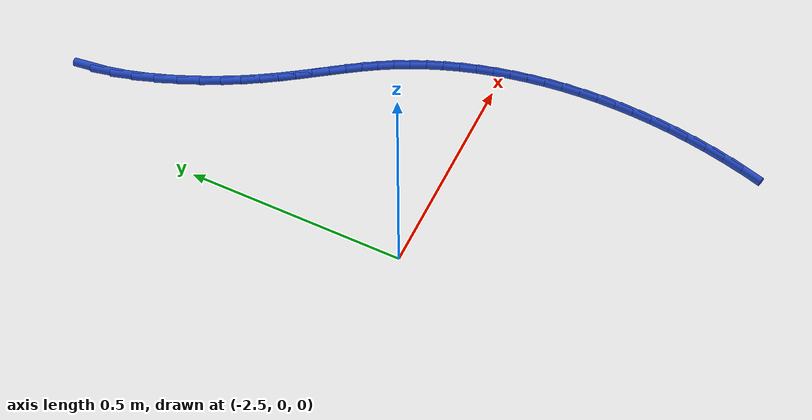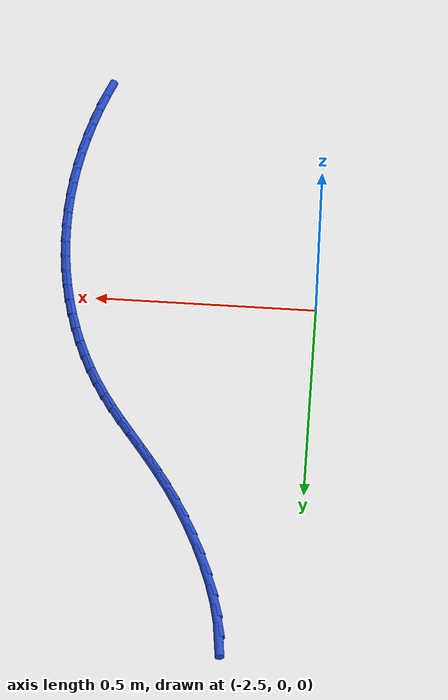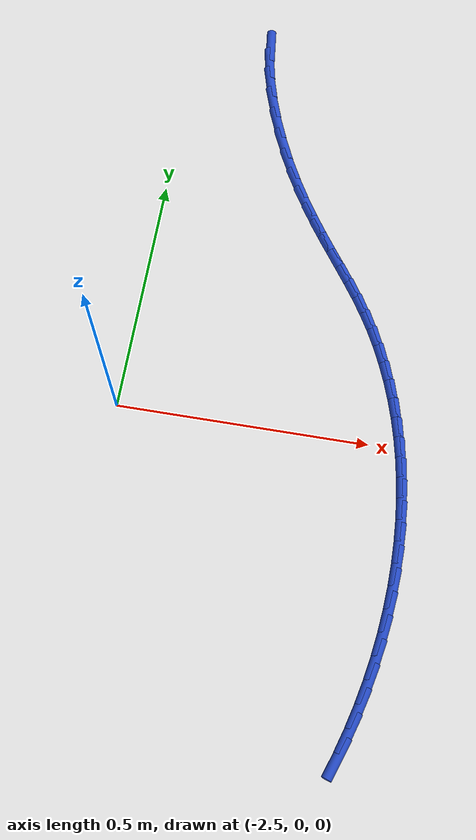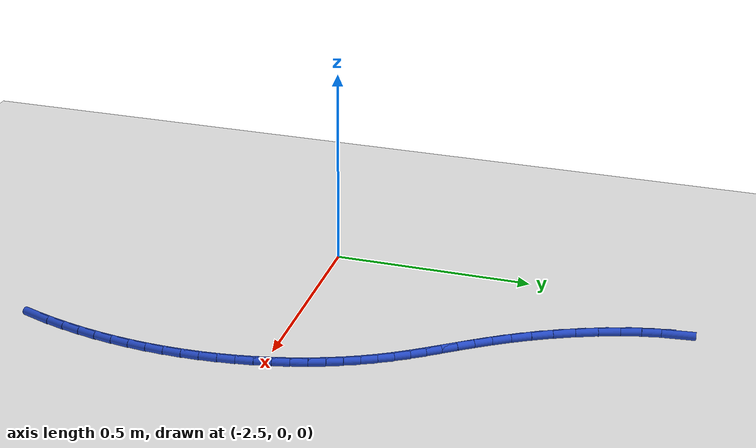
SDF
<sdf version="1.6">
 <world name="default">
  <model name="ground_plane">
   <static>1</static>
   <link name="link">
    <collision name="collision">
     <geometry><plane><normal>0 0 1</normal><size>100 100</size></plane></geometry>
     <surface><friction><ode><mu>100</mu><mu2>50</mu2></ode></friction></surface>
    </collision>
    <visual name="visual">
     <cast_shadows>0</cast_shadows>
     <geometry><plane><normal>0 0 1</normal><size>100 100</size></plane></geometry>
     <material>
      <script><uri>file://media/materials/scripts/gazebo.material</uri><name>Gazebo/WhiteGlow</name></script>
     </material>
    </visual>
   </link>
  </model>
  <model name="line">
   <link name="link_94">
    <pose>-2.339543125354794 0.8880989711312886 0.01 0 1.57 -1.4558069068487225</pose>
    <collision name="collision">
     <geometry><cylinder><radius>0.01</radius><length>0.08</length></cylinder></geometry>
    </collision>
    <visual name="visual">
     <material>
      <script><name>Gazebo/Blue</name><uri>file://media/materials/scripts/gazebo.material</uri></script>
     </material>
     <geometry><cylinder><radius>0.01</radius><length>0.08</length></cylinder></geometry>
    </visual>
   </link>
   <link name="link_95">
    <pose>-2.334252668444939 0.8422937263948799 0.01 0 1.57 -1.362556454553625</pose>
    <collision name="collision">
     <geometry><cylinder><radius>0.01</radius><length>0.08</length></cylinder></geometry>
    </collision>
    <visual name="visual">
     <material>
      <script><name>Gazebo/Blue</name><uri>file://media/materials/scripts/gazebo.material</uri></script>
     </material>
     <geometry><cylinder><radius>0.01</radius><length>0.08</length></cylinder></geometry>
    </visual>
   </link>
   <link name="link_96">
    <pose>-2.3239082006282477 0.7933381236551375 0.01 0 1.57 -1.2915674055985036</pose>
    <collision name="collision">
     <geometry><cylinder><radius>0.01</radius><length>0.08</length></cylinder></geometry>
    </collision>
    <visual name="visual">
     <material>
      <script><name>Gazebo/Blue</name><uri>file://media/materials/scripts/gazebo.material</uri></script>
     </material>
     <geometry><cylinder><radius>0.01</radius><length>0.08</length></cylinder></geometry>
    </visual>
   </link>
   <link name="link_97">
    <pose>-2.309368629777402 0.7426280670860155 0.01 0 1.57 -1.2340909129045048</pose>
    <collision name="collision">
     <geometry><cylinder><radius>0.01</radius><length>0.08</length></cylinder></geometry>
    </collision>
    <visual name="visual">
     <material>
      <script><name>Gazebo/Blue</name><uri>file://media/materials/scripts/gazebo.material</uri></script>
     </material>
     <geometry><cylinder><radius>0.01</radius><length>0.08</length></cylinder></geometry>
    </visual>
   </link>
   <link name="link_98">
    <pose>-2.2914928637650833 0.6915594608614679 0.01 0 1.57 -1.184435828125595</pose>
    <collision name="collision">
     <geometry><cylinder><radius>0.01</radius><length>0.08</length></cylinder></geometry>
    </collision>
    <visual name="visual">
     <material>
      <script><name>Gazebo/Blue</name><uri>file://media/materials/scripts/gazebo.material</uri></script>
     </material>
     <geometry><cylinder><radius>0.01</radius><length>0.08</length></cylinder></geometry>
    </visual>
   </link>
   <link name="link_99">
    <pose>-2.2711398104639726 0.6415282091554497 0.01 0 1.57 -1.1383343717587673</pose>
    <collision name="collision">
     <geometry><cylinder><radius>0.01</radius><length>0.08</length></cylinder></geometry>
    </collision>
    <visual name="visual">
     <material>
      <script><name>Gazebo/Blue</name><uri>file://media/materials/scripts/gazebo.material</uri></script>
     </material>
     <geometry><cylinder><radius>0.01</radius><length>0.08</length></cylinder></geometry>
    </visual>
   </link>
   <link name="link_100">
    <pose>-2.249168377746752 0.5939302161419151 0.01 0 1.57 -1.0925725735714122</pose>
    <collision name="collision">
     <geometry><cylinder><radius>0.01</radius><length>0.08</length></cylinder></geometry>
    </collision>
    <visual name="visual">
     <material>
      <script><name>Gazebo/Blue</name><uri>file://media/materials/scripts/gazebo.material</uri></script>
     </material>
     <geometry><cylinder><radius>0.01</radius><length>0.08</length></cylinder></geometry>
    </visual>
   </link>
   <link name="link_101">
    <pose>-2.226366597310803 0.5499415033219542 0.01 0 1.57 -1.049382398713243</pose>
    <collision name="collision">
     <geometry><cylinder><radius>0.01</radius><length>0.08</length></cylinder></geometry>
    </collision>
    <visual name="visual">
     <material>
      <script><name>Gazebo/Blue</name><uri>file://media/materials/scripts/gazebo.material</uri></script>
     </material>
     <geometry><cylinder><radius>0.01</radius><length>0.08</length></cylinder></geometry>
    </visual>
   </link>
   <link name="link_102">
    <pose>-2.203108166728589 0.5094526828971048 0.01 0 1.57 -1.0119295050223813</pose>
    <collision name="collision">
     <geometry><cylinder><radius>0.01</radius><length>0.08</length></cylinder></geometry>
    </collision>
    <visual name="visual">
     <material>
      <script><name>Gazebo/Blue</name><uri>file://media/materials/scripts/gazebo.material</uri></script>
     </material>
     <geometry><cylinder><radius>0.01</radius><length>0.08</length></cylinder></geometry>
    </visual>
   </link>
   <link name="link_103">
    <pose>-2.179616661858634 0.4718886370323146 0.01 0 1.57 -0.9823118085412881</pose>
    <collision name="collision">
     <geometry><cylinder><radius>0.01</radius><length>0.08</length></cylinder></geometry>
    </collision>
    <visual name="visual">
     <material>
      <script><name>Gazebo/Blue</name><uri>file://media/materials/scripts/gazebo.material</uri></script>
     </material>
     <geometry><cylinder><radius>0.01</radius><length>0.08</length></cylinder></geometry>
    </visual>
   </link>
   <link name="link_104">
    <pose>-2.1561154499528667 0.43667360072194605 0.01 0 1.57 -0.962516980219729</pose>
    <collision name="collision">
     <geometry><cylinder><radius>0.01</radius><length>0.08</length></cylinder></geometry>
    </collision>
    <visual name="visual">
     <material>
      <script><name>Gazebo/Blue</name><uri>file://media/materials/scripts/gazebo.material</uri></script>
     </material>
     <geometry><cylinder><radius>0.01</radius><length>0.08</length></cylinder></geometry>
    </visual>
   </link>
   <link name="link_105">
    <pose>-2.1328278982632174 0.40323180896036326 0.01 0 1.57 -0.95427632426678</pose>
    <collision name="collision">
     <geometry><cylinder><radius>0.01</radius><length>0.08</length></cylinder></geometry>
    </collision>
    <visual name="visual">
     <material>
      <script><name>Gazebo/Blue</name><uri>file://media/materials/scripts/gazebo.material</uri></script>
     </material>
     <geometry><cylinder><radius>0.01</radius><length>0.08</length></cylinder></geometry>
    </visual>
   </link>
   <link name="link_106">
    <pose>-2.1099773740416157 0.37098749674192866 0.01 0 1.57 -0.9589186222257577</pose>
    <collision name="collision">
     <geometry><cylinder><radius>0.01</radius><length>0.08</length></cylinder></geometry>
    </collision>
    <visual name="visual">
     <material>
      <script><name>Gazebo/Blue</name><uri>file://media/materials/scripts/gazebo.material</uri></script>
     </material>
     <geometry><cylinder><radius>0.01</radius><length>0.08</length></cylinder></geometry>
    </visual>
   </link>
   <link name="link_107">
    <pose>-2.087787244539991 0.3393648990610062 0.01 0 1.57 -0.9772179010954428</pose>
    <collision name="collision">
     <geometry><cylinder><radius>0.01</radius><length>0.08</length></cylinder></geometry>
    </collision>
    <visual name="visual">
     <material>
      <script><name>Gazebo/Blue</name><uri>file://media/materials/scripts/gazebo.material</uri></script>
     </material>
     <geometry><cylinder><radius>0.01</radius><length>0.08</length></cylinder></geometry>
    </visual>
   </link>
   <link name="link_108">
    <pose>-2.066480877010272 0.30778825091195827 0.01 0 1.57 -1.0092304292322214</pose>
    <collision name="collision">
     <geometry><cylinder><radius>0.01</radius><length>0.08</length></cylinder></geometry>
    </collision>
    <visual name="visual">
     <material>
      <script><name>Gazebo/Blue</name><uri>file://media/materials/scripts/gazebo.material</uri></script>
     </material>
     <geometry><cylinder><radius>0.01</radius><length>0.08</length></cylinder></geometry>
    </visual>
   </link>
   <link name="link_109">
    <pose>-2.046281638704389 0.27568178728914877 0.01 0 1.57 -1.0533196043115125</pose>
    <collision name="collision">
     <geometry><cylinder><radius>0.01</radius><length>0.08</length></cylinder></geometry>
    </collision>
    <visual name="visual">
     <material>
      <script><name>Gazebo/Blue</name><uri>file://media/materials/scripts/gazebo.material</uri></script>
     </material>
     <geometry><cylinder><radius>0.01</radius><length>0.08</length></cylinder></geometry>
    </visual>
   </link>
   <link name="link_110">
    <pose>-2.027400151692515 0.2425107572726747 0.01 0 1.57 -1.1006351664112304</pose>
    <collision name="collision">
     <geometry><cylinder><radius>0.01</radius><length>0.08</length></cylinder></geometry>
    </collision>
    <visual name="visual">
     <material>
      <script><name>Gazebo/Blue</name><uri>file://media/materials/scripts/gazebo.material</uri></script>
     </material>
     <geometry><cylinder><radius>0.01</radius><length>0.08</length></cylinder></geometry>
    </visual>
   </link>
   <link name="link_111">
    <pose>-2.009927094107801 0.20812639038692746 0.01 0 1.57 -1.1467934607488224</pose>
    <collision name="collision">
     <geometry><cylinder><radius>0.01</radius><length>0.08</length></cylinder></geometry>
    </collision>
    <visual name="visual">
     <material>
      <script><name>Gazebo/Blue</name><uri>file://media/materials/scripts/gazebo.material</uri></script>
     </material>
     <geometry><cylinder><radius>0.01</radius><length>0.08</length></cylinder></geometry>
    </visual>
   </link>
   <link name="link_112">
    <pose>-1.9938873447369927 0.17259165892203893 0.01 0 1.57 -1.1918384753395952</pose>
    <collision name="collision">
     <geometry><cylinder><radius>0.01</radius><length>0.08</length></cylinder></geometry>
    </collision>
    <visual name="visual">
     <material>
      <script><name>Gazebo/Blue</name><uri>file://media/materials/scripts/gazebo.material</uri></script>
     </material>
     <geometry><cylinder><radius>0.01</radius><length>0.08</length></cylinder></geometry>
    </visual>
   </link>
   <link name="link_113">
    <pose>-1.9793051056606983 0.13597171281331627 0.01 0 1.57 -1.2358616298733502</pose>
    <collision name="collision">
     <geometry><cylinder><radius>0.01</radius><length>0.08</length></cylinder></geometry>
    </collision>
    <visual name="visual">
     <material>
      <script><name>Gazebo/Blue</name><uri>file://media/materials/scripts/gazebo.material</uri></script>
     </material>
     <geometry><cylinder><radius>0.01</radius><length>0.08</length></cylinder></geometry>
    </visual>
   </link>
   <link name="link_114">
    <pose>-1.966204578959523 0.09833170199606497 0.01 0 1.57 -1.2789560453083832</pose>
    <collision name="collision">
     <geometry><cylinder><radius>0.01</radius><length>0.08</length></cylinder></geometry>
    </collision>
    <visual name="visual">
     <material>
      <script><name>Gazebo/Blue</name><uri>file://media/materials/scripts/gazebo.material</uri></script>
     </material>
     <geometry><cylinder><radius>0.01</radius><length>0.08</length></cylinder></geometry>
    </visual>
   </link>
   <link name="link_115">
    <pose>-1.9546099667140773 0.05973677640559396 0.01 0 1.57 -1.321214854419236</pose>
    <collision name="collision">
     <geometry><cylinder><radius>0.01</radius><length>0.08</length></cylinder></geometry>
    </collision>
    <visual name="visual">
     <material>
      <script><name>Gazebo/Blue</name><uri>file://media/materials/scripts/gazebo.material</uri></script>
     </material>
     <geometry><cylinder><radius>0.01</radius><length>0.08</length></cylinder></geometry>
    </visual>
   </link>
   <link name="link_116">
    <pose>-1.9445454710049677 0.020252085977209233 0.01 0 1.57 -1.3627298623386195</pose>
    <collision name="collision">
     <geometry><cylinder><radius>0.01</radius><length>0.08</length></cylinder></geometry>
    </collision>
    <visual name="visual">
     <material>
      <script><name>Gazebo/Blue</name><uri>file://media/materials/scripts/gazebo.material</uri></script>
     </material>
     <geometry><cylinder><radius>0.01</radius><length>0.08</length></cylinder></geometry>
    </visual>
   </link>
   <link name="link_117">
    <pose>-1.9360352939128025 -0.020057219353782466 0.01 0 1.57 -1.4035904987789203</pose>
    <collision name="collision">
     <geometry><cylinder><radius>0.01</radius><length>0.08</length></cylinder></geometry>
    </collision>
    <visual name="visual">
     <material>
      <script><name>Gazebo/Blue</name><uri>file://media/materials/scripts/gazebo.material</uri></script>
     </material>
     <geometry><cylinder><radius>0.01</radius><length>0.08</length></cylinder></geometry>
    </visual>
   </link>
   <link name="link_118">
    <pose>-1.9291036375181891 -0.06112598965207534 0.01 0 1.57 -1.4438830066574453</pose>
    <collision name="collision">
     <geometry><cylinder><radius>0.01</radius><length>0.08</length></cylinder></geometry>
    </collision>
    <visual name="visual">
     <material>
      <script><name>Gazebo/Blue</name><uri>file://media/materials/scripts/gazebo.material</uri></script>
     </material>
     <geometry><cylinder><radius>0.01</radius><length>0.08</length></cylinder></geometry>
    </visual>
   </link>
   <link name="link_119">
    <pose>-1.923774703901735 -0.10288907498236037 0.01 0 1.57 -1.483689817245496</pose>
    <collision name="collision">
     <geometry><cylinder><radius>0.01</radius><length>0.08</length></cylinder></geometry>
    </collision>
    <visual name="visual">
     <material>
      <script><name>Gazebo/Blue</name><uri>file://media/materials/scripts/gazebo.material</uri></script>
     </material>
     <geometry><cylinder><radius>0.01</radius><length>0.08</length></cylinder></geometry>
    </visual>
   </link>
   <link name="link_120">
    <pose>-1.9200726951440483 -0.14528132540933186 0.01 0 1.57 -1.5230890684845853</pose>
    <collision name="collision">
     <geometry><cylinder><radius>0.01</radius><length>0.08</length></cylinder></geometry>
    </collision>
    <visual name="visual">
     <material>
      <script><name>Gazebo/Blue</name><uri>file://media/materials/scripts/gazebo.material</uri></script>
     </material>
     <geometry><cylinder><radius>0.01</radius><length>0.08</length></cylinder></geometry>
    </visual>
   </link>
   <link name="link_121">
    <pose>-1.9180218133257374 -0.18823759099768295 0.01 0 1.57 -1.5621542299526647</pose>
    <collision name="collision">
     <geometry><cylinder><radius>0.01</radius><length>0.08</length></cylinder></geometry>
    </collision>
    <visual name="visual">
     <material>
      <script><name>Gazebo/Blue</name><uri>file://media/materials/scripts/gazebo.material</uri></script>
     </material>
     <geometry><cylinder><radius>0.01</radius><length>0.08</length></cylinder></geometry>
    </visual>
   </link>
   <link name="link_122">
    <pose>-1.917646260527409 -0.23169272181210773 0.01 0 1.57 1.5406388489616392</pose>
    <collision name="collision">
     <geometry><cylinder><radius>0.01</radius><length>0.08</length></cylinder></geometry>
    </collision>
    <visual name="visual">
     <material>
      <script><name>Gazebo/Blue</name><uri>file://media/materials/scripts/gazebo.material</uri></script>
     </material>
     <geometry><cylinder><radius>0.01</radius><length>0.08</length></cylinder></geometry>
    </visual>
   </link>
   <link name="link_123">
    <pose>-1.9189702388296714 -0.2755815679172974 0.01 0 1.57 1.5020415697624803</pose>
    <collision name="collision">
     <geometry><cylinder><radius>0.01</radius><length>0.08</length></cylinder></geometry>
    </collision>
    <visual name="visual">
     <material>
      <script><name>Gazebo/Blue</name><uri>file://media/materials/scripts/gazebo.material</uri></script>
     </material>
     <geometry><cylinder><radius>0.01</radius><length>0.08</length></cylinder></geometry>
    </visual>
   </link>
   <link name="link_124">
    <pose>-1.9220179503131323 -0.319838979377946 0.01 0 1.57 1.4635887162197723</pose>
    <collision name="collision">
     <geometry><cylinder><radius>0.01</radius><length>0.08</length></cylinder></geometry>
    </collision>
    <visual name="visual">
     <material>
      <script><name>Gazebo/Blue</name><uri>file://media/materials/scripts/gazebo.material</uri></script>
     </material>
     <geometry><cylinder><radius>0.01</radius><length>0.08</length></cylinder></geometry>
    </visual>
   </link>
   <link name="link_125">
    <pose>-1.9268135970583993 -0.3643998062587467 0.01 0 1.57 1.4252280274531621</pose>
    <collision name="collision">
     <geometry><cylinder><radius>0.01</radius><length>0.08</length></cylinder></geometry>
    </collision>
    <visual name="visual">
     <material>
      <script><name>Gazebo/Blue</name><uri>file://media/materials/scripts/gazebo.material</uri></script>
     </material>
     <geometry><cylinder><radius>0.01</radius><length>0.08</length></cylinder></geometry>
    </visual>
   </link>
   <link name="link_126">
    <pose>-1.9333813811460803 -0.40919889862439385 0.01 0 1.57 1.3869130248449322</pose>
    <collision name="collision">
     <geometry><cylinder><radius>0.01</radius><length>0.08</length></cylinder></geometry>
    </collision>
    <visual name="visual">
     <material>
      <script><name>Gazebo/Blue</name><uri>file://media/materials/scripts/gazebo.material</uri></script>
     </material>
     <geometry><cylinder><radius>0.01</radius><length>0.08</length></cylinder></geometry>
    </visual>
   </link>
   <link name="link_127">
    <pose>-1.941745504656783 -0.45417110653957843 0.01 0 1.57 1.348603175446777</pose>
    <collision name="collision">
     <geometry><cylinder><radius>0.01</radius><length>0.08</length></cylinder></geometry>
    </collision>
    <visual name="visual">
     <material>
      <script><name>Gazebo/Blue</name><uri>file://media/materials/scripts/gazebo.material</uri></script>
     </material>
     <geometry><cylinder><radius>0.01</radius><length>0.08</length></cylinder></geometry>
    </visual>
   </link>
   <link name="link_128">
    <pose>-1.9519301696711149 -0.49925128006899433 0.01 0 1.57 1.3102640460624864</pose>
    <collision name="collision">
     <geometry><cylinder><radius>0.01</radius><length>0.08</length></cylinder></geometry>
    </collision>
    <visual name="visual">
     <material>
      <script><name>Gazebo/Blue</name><uri>file://media/materials/scripts/gazebo.material</uri></script>
     </material>
     <geometry><cylinder><radius>0.01</radius><length>0.08</length></cylinder></geometry>
    </visual>
   </link>
   <link name="link_129">
    <pose>-1.9639595782696846 -0.5443742692773353 0.01 0 1.57 1.2718674454203975</pose>
    <collision name="collision">
     <geometry><cylinder><radius>0.01</radius><length>0.08</length></cylinder></geometry>
    </collision>
    <visual name="visual">
     <material>
      <script><name>Gazebo/Blue</name><uri>file://media/materials/scripts/gazebo.material</uri></script>
     </material>
     <geometry><cylinder><radius>0.01</radius><length>0.08</length></cylinder></geometry>
    </visual>
   </link>
   <link name="link_130">
    <pose>-1.9778579325330985 -0.589474924229294 0.01 0 1.57 1.2333915491016778</pose>
    <collision name="collision">
     <geometry><cylinder><radius>0.01</radius><length>0.08</length></cylinder></geometry>
    </collision>
    <visual name="visual">
     <material>
      <script><name>Gazebo/Blue</name><uri>file://media/materials/scripts/gazebo.material</uri></script>
     </material>
     <geometry><cylinder><radius>0.01</radius><length>0.08</length></cylinder></geometry>
    </visual>
   </link>
  </model>
 </world>
</sdf>
